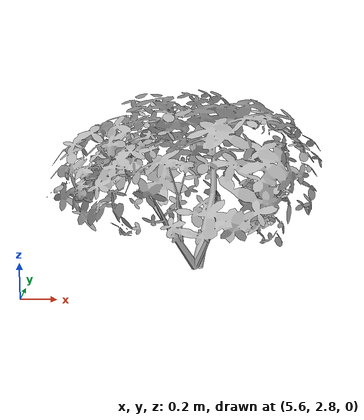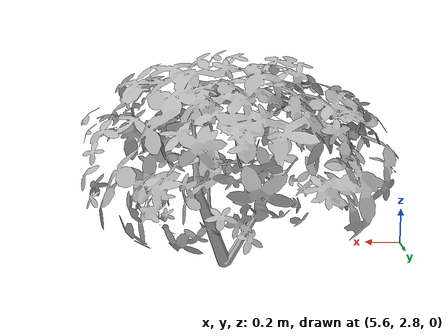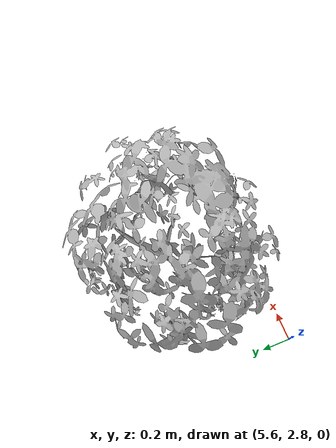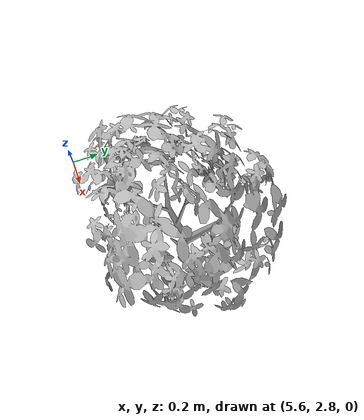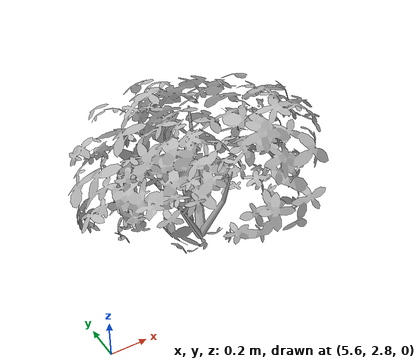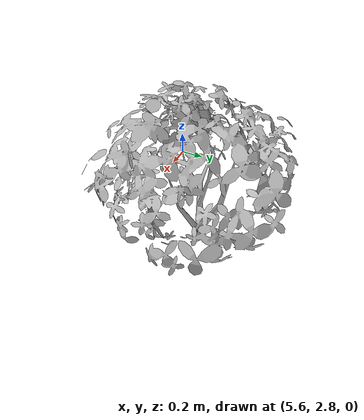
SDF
<?xml version="1.0"?>
<sdf version="1.4">
  <model name="bush">
    <static>true</static>
    <link name="link">
      <pose>0 0 0 0 0 0</pose>
      <collision name="collision">
        <geometry>
          <mesh>
             <uri>model://bush/models/bush.dae</uri>
	     <scale>1 1 1</scale>
          </mesh>
        </geometry>
      </collision>
      <visual name="visual">
         <geometry>
          <mesh>
             <uri>model://bush/models/bush.dae</uri>
	     <scale>1 1 1</scale>
          </mesh>
        </geometry>
      </visual>
    </link>
  </model>
</sdf>
